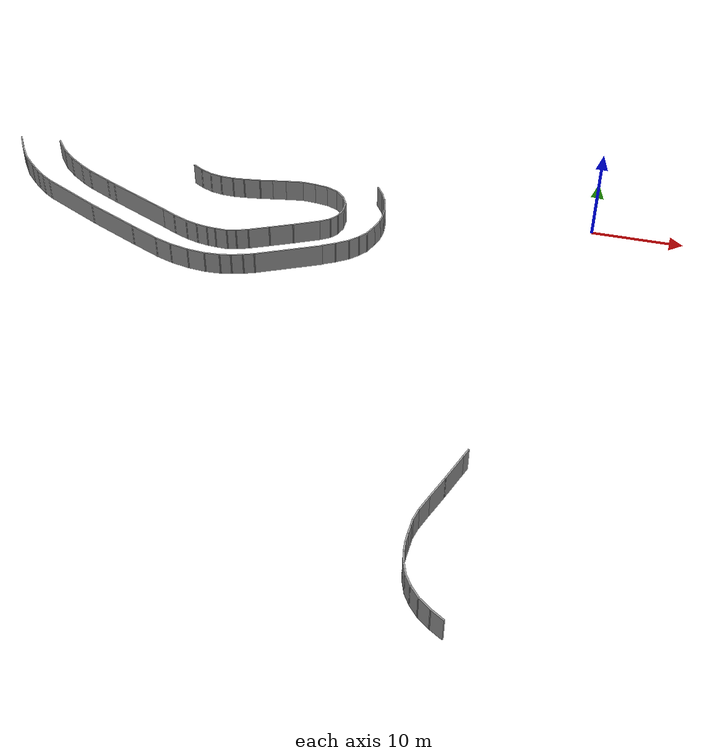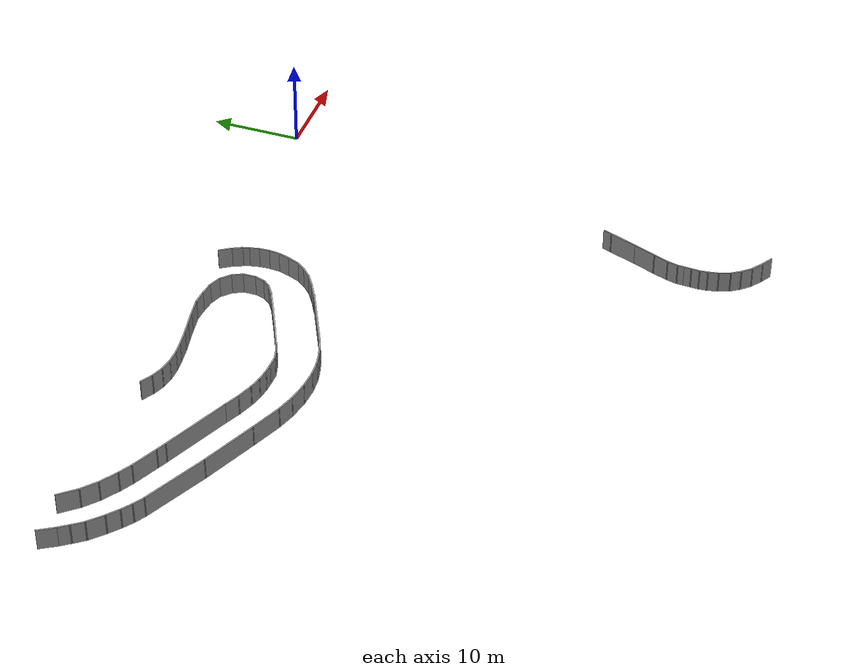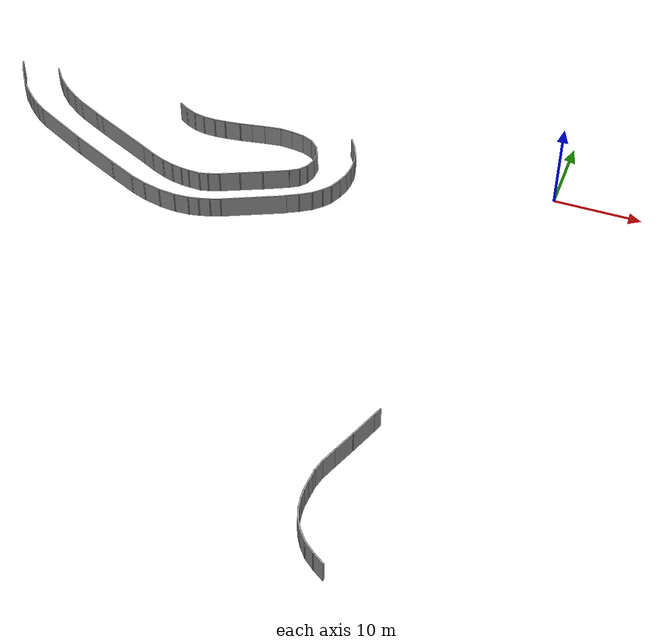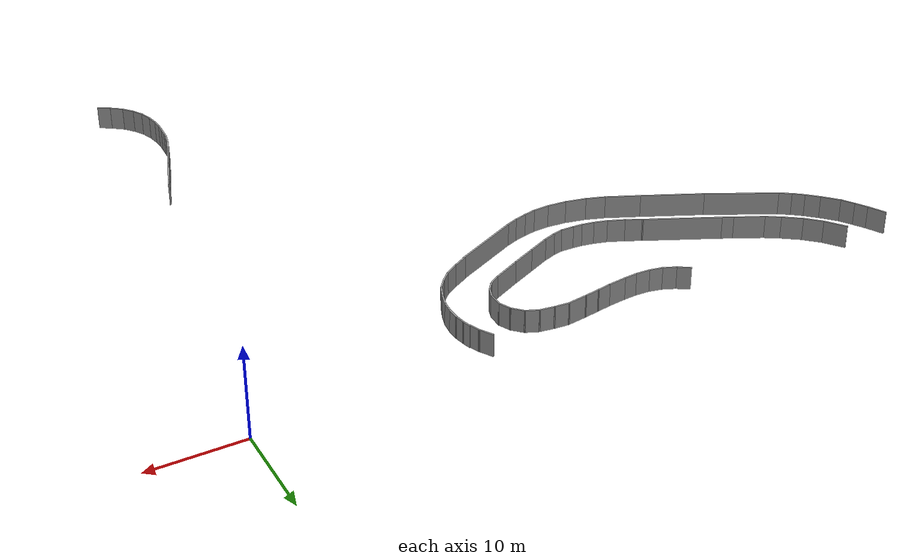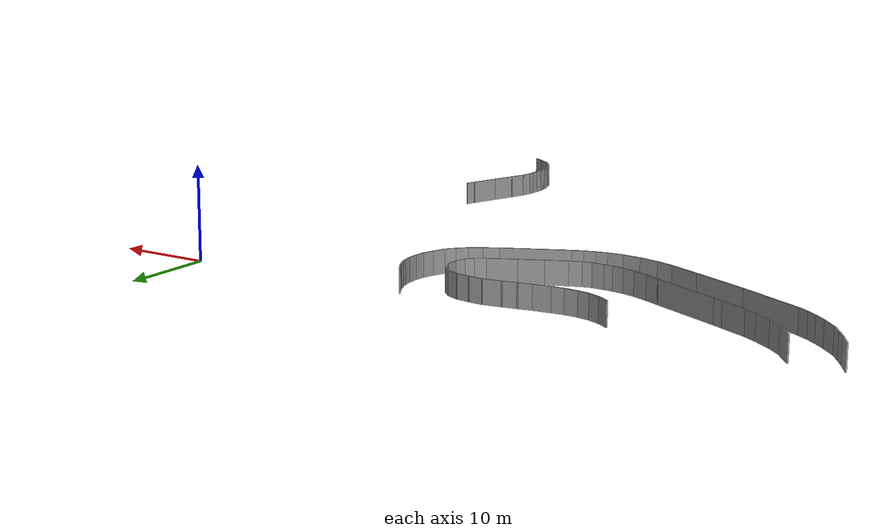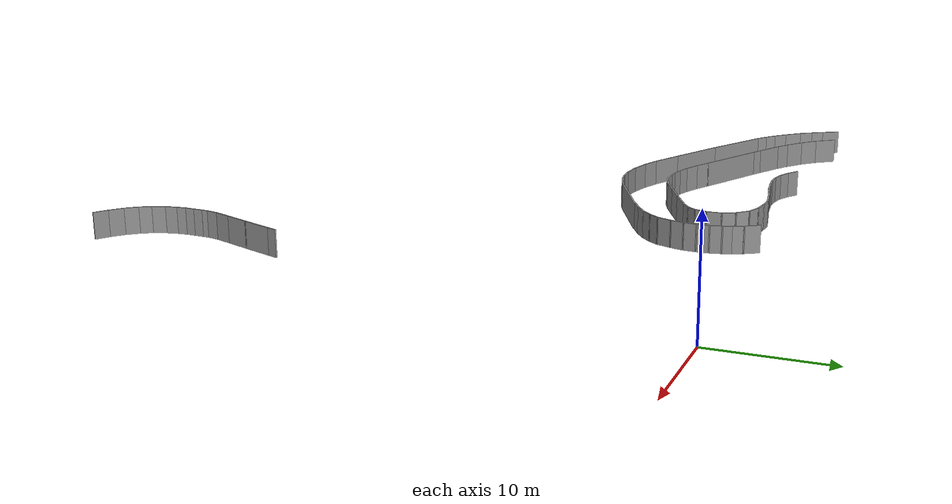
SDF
<sdf version="1.6">
 <model name="pista">
  <pose>-3.33646 -16.6519 0 0 -0 0</pose>
  <link name="Wall_122">
   <collision name="Wall_122_Collision">
    <geometry><box><size>1.00287 0.15 2.5</size></box></geometry>
    <pose>0 0 1.25 0 -0 0</pose>
   </collision>
   <visual name="Wall_122_Visual">
    <pose>0 0 1.25 0 -0 0</pose>
    <geometry><box><size>1.00287 0.15 2.5</size></box></geometry>
    <material>
     <script><uri>file://media/materials/scripts/gazebo.material</uri><name>Gazebo/Grey</name></script>
     <ambient>1 1 1 1</ambient>
    </material>
    <meta><layer>0</layer></meta>
   </visual>
   <pose>-7.35618 -32.3202 0 0 0 -1.63322</pose>
  </link>
  <link name="Wall_123">
   <collision name="Wall_123_Collision">
    <geometry><box><size>1.0548 0.15 2.5</size></box></geometry>
    <pose>0 0 1.25 0 -0 0</pose>
   </collision>
   <visual name="Wall_123_Visual">
    <pose>0 0 1.25 0 -0 0</pose>
    <geometry><box><size>1.0548 0.15 2.5</size></box></geometry>
    <material>
     <script><uri>file://media/materials/scripts/gazebo.material</uri><name>Gazebo/Grey</name></script>
     <ambient>1 1 1 1</ambient>
    </material>
    <meta><layer>0</layer></meta>
   </visual>
   <pose>-7.39608 -33.198 0 0 0 -1.6002</pose>
  </link>
  <link name="Wall_124">
   <collision name="Wall_124_Collision">
    <geometry><box><size>1.05792 0.15 2.5</size></box></geometry>
    <pose>0 0 1.25 0 -0 0</pose>
   </collision>
   <visual name="Wall_124_Visual">
    <pose>0 0 1.25 0 -0 0</pose>
    <geometry><box><size>1.05792 0.15 2.5</size></box></geometry>
    <material>
     <script><uri>file://media/materials/scripts/gazebo.material</uri><name>Gazebo/Grey</name></script>
     <ambient>1 1 1 1</ambient>
    </material>
    <meta><layer>0</layer></meta>
   </visual>
   <pose>-7.36948 -34.1024 0 0 0 -1.48279</pose>
  </link>
  <link name="Wall_125">
   <collision name="Wall_125_Collision">
    <geometry><box><size>1.2873 0.15 2.5</size></box></geometry>
    <pose>0 0 1.25 0 -0 0</pose>
   </collision>
   <visual name="Wall_125_Visual">
    <pose>0 0 1.25 0 -0 0</pose>
    <geometry><box><size>1.2873 0.15 2.5</size></box></geometry>
    <material>
     <script><uri>file://media/materials/scripts/gazebo.material</uri><name>Gazebo/Grey</name></script>
     <ambient>1 1 1 1</ambient>
    </material>
    <meta><layer>0</layer></meta>
   </visual>
   <pose>-7.22318 -35.1132 0 0 0 -1.38258</pose>
  </link>
  <link name="Wall_126">
   <collision name="Wall_126_Collision">
    <geometry><box><size>1.42042 0.15 2.5</size></box></geometry>
    <pose>0 0 1.25 0 -0 0</pose>
   </collision>
   <visual name="Wall_126_Visual">
    <pose>0 0 1.25 0 -0 0</pose>
    <geometry><box><size>1.42042 0.15 2.5</size></box></geometry>
    <material>
     <script><uri>file://media/materials/scripts/gazebo.material</uri><name>Gazebo/Grey</name></script>
     <ambient>1 1 1 1</ambient>
    </material>
    <meta><layer>0</layer></meta>
   </visual>
   <pose>-6.90397 -36.2703 0 0 0 -1.22918</pose>
  </link>
  <link name="Wall_127">
   <collision name="Wall_127_Collision">
    <geometry><box><size>1.30886 0.15 2.5</size></box></geometry>
    <pose>0 0 1.25 0 -0 0</pose>
   </collision>
   <visual name="Wall_127_Visual">
    <pose>0 0 1.25 0 -0 0</pose>
    <geometry><box><size>1.30886 0.15 2.5</size></box></geometry>
    <material>
     <script><uri>file://media/materials/scripts/gazebo.material</uri><name>Gazebo/Grey</name></script>
     <ambient>1 1 1 1</ambient>
    </material>
    <meta><layer>0</layer></meta>
   </visual>
   <pose>-6.38527 -37.3609 0 0 0 -1.01463</pose>
  </link>
  <link name="Wall_128">
   <collision name="Wall_128_Collision">
    <geometry><box><size>1.45124 0.15 2.5</size></box></geometry>
    <pose>0 0 1.25 0 -0 0</pose>
   </collision>
   <visual name="Wall_128_Visual">
    <pose>0 0 1.25 0 -0 0</pose>
    <geometry><box><size>1.45124 0.15 2.5</size></box></geometry>
    <material>
     <script><uri>file://media/materials/scripts/gazebo.material</uri><name>Gazebo/Grey</name></script>
     <ambient>1 1 1 1</ambient>
    </material>
    <meta><layer>0</layer></meta>
   </visual>
   <pose>-5.65376 -38.3451 0 0 0 -0.857736</pose>
  </link>
  <link name="Wall_129">
   <collision name="Wall_129_Collision">
    <geometry><box><size>1.55453 0.15 2.5</size></box></geometry>
    <pose>0 0 1.25 0 -0 0</pose>
   </collision>
   <visual name="Wall_129_Visual">
    <pose>0 0 1.25 0 -0 0</pose>
    <geometry><box><size>1.55453 0.15 2.5</size></box></geometry>
    <material>
     <script><uri>file://media/materials/scripts/gazebo.material</uri><name>Gazebo/Grey</name></script>
     <ambient>1 1 1 1</ambient>
    </material>
    <meta><layer>0</layer></meta>
   </visual>
   <pose>-4.66956 -39.2629 0 0 0 -0.651077</pose>
  </link>
  <link name="Wall_130">
   <collision name="Wall_130_Collision">
    <geometry><box><size>1.46395 0.15 2.5</size></box></geometry>
    <pose>0 0 1.25 0 -0 0</pose>
   </collision>
   <visual name="Wall_130_Visual">
    <pose>0 0 1.25 0 -0 0</pose>
    <geometry><box><size>1.46395 0.15 2.5</size></box></geometry>
    <material>
     <script><uri>file://media/materials/scripts/gazebo.material</uri><name>Gazebo/Grey</name></script>
     <ambient>1 1 1 1</ambient>
    </material>
    <meta><layer>0</layer></meta>
   </visual>
   <pose>-3.55235 -40.0343 0 0 0 -0.554307</pose>
  </link>
  <link name="Wall_149">
   <collision name="Wall_149_Collision">
    <geometry><box><size>0.788959 0.15 2.5</size></box></geometry>
    <pose>0 0 1.25 0 -0 0</pose>
   </collision>
   <visual name="Wall_149_Visual">
    <pose>0 0 1.25 0 -0 0</pose>
    <geometry><box><size>0.788959 0.15 2.5</size></box></geometry>
    <material>
     <script><uri>file://media/materials/scripts/gazebo.material</uri><name>Gazebo/Grey</name></script>
     <ambient>1 1 1 1</ambient>
    </material>
    <meta><layer>0</layer></meta>
   </visual>
   <pose>-7.31628 -31.5488 0 0 -0 1.52915</pose>
  </link>
  <link name="Wall_150">
   <collision name="Wall_150_Collision">
    <geometry><box><size>1.35026 0.15 2.5</size></box></geometry>
    <pose>0 0 1.25 0 -0 0</pose>
   </collision>
   <visual name="Wall_150_Visual">
    <pose>0 0 1.25 0 -0 0</pose>
    <geometry><box><size>1.35026 0.15 2.5</size></box></geometry>
    <material>
     <script><uri>file://media/materials/scripts/gazebo.material</uri><name>Gazebo/Grey</name></script>
     <ambient>1 1 1 1</ambient>
    </material>
    <meta><layer>0</layer></meta>
   </visual>
   <pose>-7.16998 -30.6444 0 0 -0 1.34732</pose>
  </link>
  <link name="Wall_151">
   <collision name="Wall_151_Collision">
    <geometry><box><size>1.87492 0.15 2.5</size></box></geometry>
    <pose>0 0 1.25 0 -0 0</pose>
   </collision>
   <visual name="Wall_151_Visual">
    <pose>0 0 1.25 0 -0 0</pose>
    <geometry><box><size>1.87492 0.15 2.5</size></box></geometry>
    <material>
     <script><uri>file://media/materials/scripts/gazebo.material</uri><name>Gazebo/Grey</name></script>
     <ambient>1 1 1 1</ambient>
    </material>
    <meta><layer>0</layer></meta>
   </visual>
   <pose>-6.74437 -29.2479 0 0 -0 1.22466</pose>
  </link>
  <link name="Wall_152">
   <collision name="Wall_152_Collision">
    <geometry><box><size>2.70915 0.15 2.5</size></box></geometry>
    <pose>0 0 1.25 0 -0 0</pose>
   </collision>
   <visual name="Wall_152_Visual">
    <pose>0 0 1.25 0 -0 0</pose>
    <geometry><box><size>2.70915 0.15 2.5</size></box></geometry>
    <material>
     <script><uri>file://media/materials/scripts/gazebo.material</uri><name>Gazebo/Grey</name></script>
     <ambient>1 1 1 1</ambient>
    </material>
    <meta><layer>0</layer></meta>
   </visual>
   <pose>-5.99957 -27.2396 0 0 -0 1.20959</pose>
  </link>
  <link name="Wall_153">
   <collision name="Wall_153_Collision">
    <geometry><box><size>3.28849 0.15 2.5</size></box></geometry>
    <pose>0 0 1.25 0 -0 0</pose>
   </collision>
   <visual name="Wall_153_Visual">
    <pose>0 0 1.25 0 -0 0</pose>
    <geometry><box><size>3.28849 0.15 2.5</size></box></geometry>
    <material>
     <script><uri>file://media/materials/scripts/gazebo.material</uri><name>Gazebo/Grey</name></script>
     <ambient>1 1 1 1</ambient>
    </material>
    <meta><layer>0</layer></meta>
   </visual>
   <pose>-5.01536 -24.5662 0 0 -0 1.22492</pose>
  </link>
  <link name="Wall_154">
   <collision name="Wall_154_Collision">
    <geometry><box><size>1.08404 0.15 2.5</size></box></geometry>
    <pose>0 0 1.25 0 -0 0</pose>
   </collision>
   <visual name="Wall_154_Visual">
    <pose>0 0 1.25 0 -0 0</pose>
    <geometry><box><size>1.08404 0.15 2.5</size></box></geometry>
    <material>
     <script><uri>file://media/materials/scripts/gazebo.material</uri><name>Gazebo/Grey</name></script>
     <ambient>1 1 1 1</ambient>
    </material>
    <meta><layer>0</layer></meta>
   </visual>
   <pose>-4.32376 -22.651 0 0 -0 1.22202</pose>
  </link>
  <link name="Wall_216">
   <collision name="Wall_216_Collision">
    <geometry><box><size>1.59647 0.15 2.5</size></box></geometry>
    <pose>0 0 1.25 0 -0 0</pose>
   </collision>
   <visual name="Wall_216_Visual">
    <pose>0 0 1.25 0 -0 0</pose>
    <geometry><box><size>1.59647 0.15 2.5</size></box></geometry>
    <material>
     <script><uri>file://media/materials/scripts/gazebo.material</uri><name>Gazebo/Grey</name></script>
     <ambient>1 1 1 1</ambient>
    </material>
    <meta><layer>0</layer></meta>
   </visual>
   <pose>-20.643 15.4006 0 0 0 -1.0083</pose>
  </link>
  <link name="Wall_217">
   <collision name="Wall_217_Collision">
    <geometry><box><size>1.24675 0.15 2.5</size></box></geometry>
    <pose>0 0 1.25 0 -0 0</pose>
   </collision>
   <visual name="Wall_217_Visual">
    <pose>0 0 1.25 0 -0 0</pose>
    <geometry><box><size>1.24675 0.15 2.5</size></box></geometry>
    <material>
     <script><uri>file://media/materials/scripts/gazebo.material</uri><name>Gazebo/Grey</name></script>
     <ambient>1 1 1 1</ambient>
    </material>
    <meta><layer>0</layer></meta>
   </visual>
   <pose>-20.0445 14.2834 0 0 0 -1.17227</pose>
  </link>
  <link name="Wall_219">
   <collision name="Wall_219_Collision">
    <geometry><box><size>0.95022 0.15 2.5</size></box></geometry>
    <pose>0 0 1.25 0 -0 0</pose>
   </collision>
   <visual name="Wall_219_Visual">
    <pose>0 0 1.25 0 -0 0</pose>
    <geometry><box><size>0.95022 0.15 2.5</size></box></geometry>
    <material>
     <script><uri>file://media/materials/scripts/gazebo.material</uri><name>Gazebo/Grey</name></script>
     <ambient>1 1 1 1</ambient>
    </material>
    <meta><layer>0</layer></meta>
   </visual>
   <pose>-19.6721 13.4188 0 0 0 -1.30163</pose>
  </link>
  <link name="Wall_220">
   <collision name="Wall_220_Collision">
    <geometry><box><size>1.23508 0.15 2.5</size></box></geometry>
    <pose>0 0 1.25 0 -0 0</pose>
   </collision>
   <visual name="Wall_220_Visual">
    <pose>0 0 1.25 0 -0 0</pose>
    <geometry><box><size>1.23508 0.15 2.5</size></box></geometry>
    <material>
     <script><uri>file://media/materials/scripts/gazebo.material</uri><name>Gazebo/Grey</name></script>
     <ambient>1 1 1 1</ambient>
    </material>
    <meta><layer>0</layer></meta>
   </visual>
   <pose>-19.4593 12.5011 0 0 0 -1.3734</pose>
  </link>
  <link name="Wall_221">
   <collision name="Wall_221_Collision">
    <geometry><box><size>1.29412 0.15 2.5</size></box></geometry>
    <pose>0 0 1.25 0 -0 0</pose>
   </collision>
   <visual name="Wall_221_Visual">
    <pose>0 0 1.25 0 -0 0</pose>
    <geometry><box><size>1.29412 0.15 2.5</size></box></geometry>
    <material>
     <script><uri>file://media/materials/scripts/gazebo.material</uri><name>Gazebo/Grey</name></script>
     <ambient>1 1 1 1</ambient>
    </material>
    <meta><layer>0</layer></meta>
   </visual>
   <pose>-19.3263 11.3972 0 0 0 -1.52432</pose>
  </link>
  <link name="Wall_222">
   <collision name="Wall_222_Collision">
    <geometry><box><size>1.32523 0.15 2.5</size></box></geometry>
    <pose>0 0 1.25 0 -0 0</pose>
   </collision>
   <visual name="Wall_222_Visual">
    <pose>0 0 1.25 0 -0 0</pose>
    <geometry><box><size>1.32523 0.15 2.5</size></box></geometry>
    <material>
     <script><uri>file://media/materials/scripts/gazebo.material</uri><name>Gazebo/Grey</name></script>
     <ambient>1 1 1 1</ambient>
    </material>
    <meta><layer>0</layer></meta>
   </visual>
   <pose>-19.3529 10.2401 0 0 0 -1.66146</pose>
  </link>
  <link name="Wall_223">
   <collision name="Wall_223_Collision">
    <geometry><box><size>1.42153 0.15 2.5</size></box></geometry>
    <pose>0 0 1.25 0 -0 0</pose>
   </collision>
   <visual name="Wall_223_Visual">
    <pose>0 0 1.25 0 -0 0</pose>
    <geometry><box><size>1.42153 0.15 2.5</size></box></geometry>
    <material>
     <script><uri>file://media/materials/scripts/gazebo.material</uri><name>Gazebo/Grey</name></script>
     <ambient>1 1 1 1</ambient>
    </material>
    <meta><layer>0</layer></meta>
   </visual>
   <pose>-19.579 9.04311 0 0 0 -1.84622</pose>
  </link>
  <link name="Wall_224">
   <collision name="Wall_224_Collision">
    <geometry><box><size>1.58247 0.15 2.5</size></box></geometry>
    <pose>0 0 1.25 0 -0 0</pose>
   </collision>
   <visual name="Wall_224_Visual">
    <pose>0 0 1.25 0 -0 0</pose>
    <geometry><box><size>1.58247 0.15 2.5</size></box></geometry>
    <material>
     <script><uri>file://media/materials/scripts/gazebo.material</uri><name>Gazebo/Grey</name></script>
     <ambient>1 1 1 1</ambient>
    </material>
    <meta><layer>0</layer></meta>
   </visual>
   <pose>-20.0179 7.7663 0 0 0 -1.9513</pose>
  </link>
  <link name="Wall_225">
   <collision name="Wall_225_Collision">
    <geometry><box><size>1.28854 0.15 2.5</size></box></geometry>
    <pose>0 0 1.25 0 -0 0</pose>
   </collision>
   <visual name="Wall_225_Visual">
    <pose>0 0 1.25 0 -0 0</pose>
    <geometry><box><size>1.28854 0.15 2.5</size></box></geometry>
    <material>
     <script><uri>file://media/materials/scripts/gazebo.material</uri><name>Gazebo/Grey</name></script>
     <ambient>1 1 1 1</ambient>
    </material>
    <meta><layer>0</layer></meta>
   </visual>
   <pose>-20.6297 6.64909 0 0 0 -2.22364</pose>
  </link>
  <link name="Wall_226">
   <collision name="Wall_226_Collision">
    <geometry><box><size>1.39141 0.15 2.5</size></box></geometry>
    <pose>0 0 1.25 0 -0 0</pose>
   </collision>
   <visual name="Wall_226_Visual">
    <pose>0 0 1.25 0 -0 0</pose>
    <geometry><box><size>1.39141 0.15 2.5</size></box></geometry>
    <material>
     <script><uri>file://media/materials/scripts/gazebo.material</uri><name>Gazebo/Grey</name></script>
     <ambient>1 1 1 1</ambient>
    </material>
    <meta><layer>0</layer></meta>
   </visual>
   <pose>-21.4144 5.75799 0 0 0 -2.35619</pose>
  </link>
  <link name="Wall_227">
   <collision name="Wall_227_Collision">
    <geometry><box><size>1.68453 0.15 2.5</size></box></geometry>
    <pose>0 0 1.25 0 -0 0</pose>
   </collision>
   <visual name="Wall_227_Visual">
    <pose>0 0 1.25 0 -0 0</pose>
    <geometry><box><size>1.68453 0.15 2.5</size></box></geometry>
    <material>
     <script><uri>file://media/materials/scripts/gazebo.material</uri><name>Gazebo/Grey</name></script>
     <ambient>1 1 1 1</ambient>
    </material>
    <meta><layer>0</layer></meta>
   </visual>
   <pose>-22.4917 4.89348 0 0 0 -2.55359</pose>
  </link>
  <link name="Wall_228">
   <collision name="Wall_228_Collision">
    <geometry><box><size>1.69762 0.15 2.5</size></box></geometry>
    <pose>0 0 1.25 0 -0 0</pose>
   </collision>
   <visual name="Wall_228_Visual">
    <pose>0 0 1.25 0 -0 0</pose>
    <geometry><box><size>1.69762 0.15 2.5</size></box></geometry>
    <material>
     <script><uri>file://media/materials/scripts/gazebo.material</uri><name>Gazebo/Grey</name></script>
     <ambient>1 1 1 1</ambient>
    </material>
    <meta><layer>0</layer></meta>
   </visual>
   <pose>-23.8084 4.09548 0 0 0 -2.6395</pose>
  </link>
  <link name="Wall_230">
   <collision name="Wall_230_Collision">
    <geometry><box><size>7.43151 0.15 2.5</size></box></geometry>
    <pose>0 0 1.25 0 -0 0</pose>
   </collision>
   <visual name="Wall_230_Visual">
    <pose>0 0 1.25 0 -0 0</pose>
    <geometry><box><size>7.43151 0.15 2.5</size></box></geometry>
    <material>
     <script><uri>file://media/materials/scripts/gazebo.material</uri><name>Gazebo/Grey</name></script>
     <ambient>1 1 1 1</ambient>
    </material>
    <meta><layer>0</layer></meta>
   </visual>
   <pose>-27.7186 2.12706 0 0 0 -2.69592</pose>
  </link>
  <link name="Wall_231">
   <collision name="Wall_231_Collision">
    <geometry><box><size>1.34553 0.15 2.5</size></box></geometry>
    <pose>0 0 1.25 0 -0 0</pose>
   </collision>
   <visual name="Wall_231_Visual">
    <pose>0 0 1.25 0 -0 0</pose>
    <geometry><box><size>1.34553 0.15 2.5</size></box></geometry>
    <material>
     <script><uri>file://media/materials/scripts/gazebo.material</uri><name>Gazebo/Grey</name></script>
     <ambient>1 1 1 1</ambient>
    </material>
    <meta><layer>0</layer></meta>
   </visual>
   <pose>-31.5624 0.344847 0 0 0 -2.77761</pose>
  </link>
  <link name="Wall_232">
   <collision name="Wall_232_Collision">
    <geometry><box><size>1.42153 0.15 2.5</size></box></geometry>
    <pose>0 0 1.25 0 -0 0</pose>
   </collision>
   <visual name="Wall_232_Visual">
    <pose>0 0 1.25 0 -0 0</pose>
    <geometry><box><size>1.42153 0.15 2.5</size></box></geometry>
    <material>
     <script><uri>file://media/materials/scripts/gazebo.material</uri><name>Gazebo/Grey</name></script>
     <ambient>1 1 1 1</ambient>
    </material>
    <meta><layer>0</layer></meta>
   </visual>
   <pose>-32.7328 -0.040855 0 0 0 -2.86617</pose>
  </link>
  <link name="Wall_233">
   <collision name="Wall_233_Collision">
    <geometry><box><size>1.34464 0.15 2.5</size></box></geometry>
    <pose>0 0 1.25 0 -0 0</pose>
   </collision>
   <visual name="Wall_233_Visual">
    <pose>0 0 1.25 0 -0 0</pose>
    <geometry><box><size>1.34464 0.15 2.5</size></box></geometry>
    <material>
     <script><uri>file://media/materials/scripts/gazebo.material</uri><name>Gazebo/Grey</name></script>
     <ambient>1 1 1 1</ambient>
    </material>
    <meta><layer>0</layer></meta>
   </visual>
   <pose>-33.9298 -0.333458 0 0 0 -2.93983</pose>
  </link>
  <link name="Wall_234">
   <collision name="Wall_234_Collision">
    <geometry><box><size>1.80264 0.15 2.5</size></box></geometry>
    <pose>0 0 1.25 0 -0 0</pose>
   </collision>
   <visual name="Wall_234_Visual">
    <pose>0 0 1.25 0 -0 0</pose>
    <geometry><box><size>1.80264 0.15 2.5</size></box></geometry>
    <material>
     <script><uri>file://media/materials/scripts/gazebo.material</uri><name>Gazebo/Grey</name></script>
     <ambient>1 1 1 1</ambient>
    </material>
    <meta><layer>0</layer></meta>
   </visual>
   <pose>-35.3396 -0.506359 0 0 0 -3.07717</pose>
  </link>
  <link name="Wall_235">
   <collision name="Wall_235_Collision">
    <geometry><box><size>2.09836 0.15 2.5</size></box></geometry>
    <pose>0 0 1.25 0 -0 0</pose>
   </collision>
   <visual name="Wall_235_Visual">
    <pose>0 0 1.25 0 -0 0</pose>
    <geometry><box><size>2.09836 0.15 2.5</size></box></geometry>
    <material>
     <script><uri>file://media/materials/scripts/gazebo.material</uri><name>Gazebo/Grey</name></script>
     <ambient>1 1 1 1</ambient>
    </material>
    <meta><layer>0</layer></meta>
   </visual>
   <pose>-37.1351 -0.479759 0 0 -0 3.05959</pose>
  </link>
  <link name="Wall_236">
   <collision name="Wall_236_Collision">
    <geometry><box><size>2.29952 0.15 2.5</size></box></geometry>
    <pose>0 0 1.25 0 -0 0</pose>
   </collision>
   <visual name="Wall_236_Visual">
    <pose>0 0 1.25 0 -0 0</pose>
    <geometry><box><size>2.29952 0.15 2.5</size></box></geometry>
    <material>
     <script><uri>file://media/materials/scripts/gazebo.material</uri><name>Gazebo/Grey</name></script>
     <ambient>1 1 1 1</ambient>
    </material>
    <meta><layer>0</layer></meta>
   </visual>
   <pose>-39.1567 -0.173857 0 0 -0 2.92964</pose>
  </link>
  <link name="Wall_237">
   <collision name="Wall_237_Collision">
    <geometry><box><size>2.1436 0.15 2.5</size></box></geometry>
    <pose>0 0 1.25 0 -0 0</pose>
   </collision>
   <visual name="Wall_237_Visual">
    <pose>0 0 1.25 0 -0 0</pose>
    <geometry><box><size>2.1436 0.15 2.5</size></box></geometry>
    <material>
     <script><uri>file://media/materials/scripts/gazebo.material</uri><name>Gazebo/Grey</name></script>
     <ambient>1 1 1 1</ambient>
    </material>
    <meta><layer>0</layer></meta>
   </visual>
   <pose>-41.1517 0.371449 0 0 -0 2.81562</pose>
  </link>
  <link name="Wall_238">
   <collision name="Wall_238_Collision">
    <geometry><box><size>3.73402 0.15 2.5</size></box></geometry>
    <pose>0 0 1.25 0 -0 0</pose>
   </collision>
   <visual name="Wall_238_Visual">
    <pose>0 0 1.25 0 -0 0</pose>
    <geometry><box><size>3.73402 0.15 2.5</size></box></geometry>
    <material>
     <script><uri>file://media/materials/scripts/gazebo.material</uri><name>Gazebo/Grey</name></script>
     <ambient>1 1 1 1</ambient>
    </material>
    <meta><layer>0</layer></meta>
   </visual>
   <pose>-43.7319 1.42216 0 0 -0 2.72111</pose>
  </link>
  <link name="Wall_239">
   <collision name="Wall_239_Collision">
    <geometry><box><size>6.62457 0.15 2.5</size></box></geometry>
    <pose>0 0 1.25 0 -0 0</pose>
   </collision>
   <visual name="Wall_239_Visual">
    <pose>0 0 1.25 0 -0 0</pose>
    <geometry><box><size>6.62457 0.15 2.5</size></box></geometry>
    <material>
     <script><uri>file://media/materials/scripts/gazebo.material</uri><name>Gazebo/Grey</name></script>
     <ambient>1 1 1 1</ambient>
    </material>
    <meta><layer>0</layer></meta>
   </visual>
   <pose>-48.3072 3.51027 0 0 -0 2.70919</pose>
  </link>
  <link name="Wall_241">
   <collision name="Wall_241_Collision">
    <geometry><box><size>7.69213 0.15 2.5</size></box></geometry>
    <pose>0 0 1.25 0 -0 0</pose>
   </collision>
   <visual name="Wall_241_Visual">
    <pose>0 0 1.25 0 -0 0</pose>
    <geometry><box><size>7.69213 0.15 2.5</size></box></geometry>
    <material>
     <script><uri>file://media/materials/scripts/gazebo.material</uri><name>Gazebo/Grey</name></script>
     <ambient>1 1 1 1</ambient>
    </material>
    <meta><layer>0</layer></meta>
   </visual>
   <pose>-54.6114 6.56929 0 0 -0 2.67321</pose>
  </link>
  <link name="Wall_242">
   <collision name="Wall_242_Collision">
    <geometry><box><size>1.47815 0.15 2.5</size></box></geometry>
    <pose>0 0 1.25 0 -0 0</pose>
   </collision>
   <visual name="Wall_242_Visual">
    <pose>0 0 1.25 0 -0 0</pose>
    <geometry><box><size>1.47815 0.15 2.5</size></box></geometry>
    <material>
     <script><uri>file://media/materials/scripts/gazebo.material</uri><name>Gazebo/Grey</name></script>
     <ambient>1 1 1 1</ambient>
    </material>
    <meta><layer>0</layer></meta>
   </visual>
   <pose>-58.535 8.63081 0 0 -0 2.57025</pose>
  </link>
  <link name="Wall_243">
   <collision name="Wall_243_Collision">
    <geometry><box><size>1.45883 0.15 2.5</size></box></geometry>
    <pose>0 0 1.25 0 -0 0</pose>
   </collision>
   <visual name="Wall_243_Visual">
    <pose>0 0 1.25 0 -0 0</pose>
    <geometry><box><size>1.45883 0.15 2.5</size></box></geometry>
    <material>
     <script><uri>file://media/materials/scripts/gazebo.material</uri><name>Gazebo/Grey</name></script>
     <ambient>1 1 1 1</ambient>
    </material>
    <meta><layer>0</layer></meta>
   </visual>
   <pose>-59.6123 9.38892 0 0 -0 2.4859</pose>
  </link>
  <link name="Wall_244">
   <collision name="Wall_244_Collision">
    <geometry><box><size>1.71399 0.15 2.5</size></box></geometry>
    <pose>0 0 1.25 0 -0 0</pose>
   </collision>
   <visual name="Wall_244_Visual">
    <pose>0 0 1.25 0 -0 0</pose>
    <geometry><box><size>1.71399 0.15 2.5</size></box></geometry>
    <material>
     <script><uri>file://media/materials/scripts/gazebo.material</uri><name>Gazebo/Grey</name></script>
     <ambient>1 1 1 1</ambient>
    </material>
    <meta><layer>0</layer></meta>
   </visual>
   <pose>-60.7162 10.3066 0 0 -0 2.41636</pose>
  </link>
  <link name="Wall_245">
   <collision name="Wall_245_Collision">
    <geometry><box><size>2.18139 0.15 2.5</size></box></geometry>
    <pose>0 0 1.25 0 -0 0</pose>
   </collision>
   <visual name="Wall_245_Visual">
    <pose>0 0 1.25 0 -0 0</pose>
    <geometry><box><size>2.18139 0.15 2.5</size></box></geometry>
    <material>
     <script><uri>file://media/materials/scripts/gazebo.material</uri><name>Gazebo/Grey</name></script>
     <ambient>1 1 1 1</ambient>
    </material>
    <meta><layer>0</layer></meta>
   </visual>
   <pose>-62.0196 11.5435 0 0 -0 2.35619</pose>
  </link>
  <link name="Wall_246">
   <collision name="Wall_246_Collision">
    <geometry><box><size>1.6188 0.15 2.5</size></box></geometry>
    <pose>0 0 1.25 0 -0 0</pose>
   </collision>
   <visual name="Wall_246_Visual">
    <pose>0 0 1.25 0 -0 0</pose>
    <geometry><box><size>1.6188 0.15 2.5</size></box></geometry>
    <material>
     <script><uri>file://media/materials/scripts/gazebo.material</uri><name>Gazebo/Grey</name></script>
     <ambient>1 1 1 1</ambient>
    </material>
    <meta><layer>0</layer></meta>
   </visual>
   <pose>-63.1634 12.8602 0 0 -0 2.18894</pose>
  </link>
  <link name="Wall_247">
   <collision name="Wall_247_Collision">
    <geometry><box><size>1.43372 0.15 2.5</size></box></geometry>
    <pose>0 0 1.25 0 -0 0</pose>
   </collision>
   <visual name="Wall_247_Visual">
    <pose>0 0 1.25 0 -0 0</pose>
    <geometry><box><size>1.43372 0.15 2.5</size></box></geometry>
    <material>
     <script><uri>file://media/materials/scripts/gazebo.material</uri><name>Gazebo/Grey</name></script>
     <ambient>1 1 1 1</ambient>
    </material>
    <meta><layer>0</layer></meta>
   </visual>
   <pose>-63.9481 13.9908 0 0 -0 2.16455</pose>
  </link>
  <link name="Wall_249">
   <collision name="Wall_249_Collision">
    <geometry><box><size>2.05707 0.15 2.5</size></box></geometry>
    <pose>0 0 1.25 0 -0 0</pose>
   </collision>
   <visual name="Wall_249_Visual">
    <pose>0 0 1.25 0 -0 0</pose>
    <geometry><box><size>2.05707 0.15 2.5</size></box></geometry>
    <material>
     <script><uri>file://media/materials/scripts/gazebo.material</uri><name>Gazebo/Grey</name></script>
     <ambient>1 1 1 1</ambient>
    </material>
    <meta><layer>0</layer></meta>
   </visual>
   <pose>-64.8126 15.374 0 0 -0 2.09686</pose>
  </link>
  <link name="Wall_425">
   <collision name="Wall_425_Collision">
    <geometry><box><size>2.47641 0.15 2.5</size></box></geometry>
    <pose>0 0 1.25 0 -0 0</pose>
   </collision>
   <visual name="Wall_425_Visual">
    <pose>0 0 1.25 0 -0 0</pose>
    <geometry><box><size>2.47641 0.15 2.5</size></box></geometry>
    <material>
     <script><uri>file://media/materials/scripts/gazebo.material</uri><name>Gazebo/Grey</name></script>
     <ambient>1 1 1 1</ambient>
    </material>
    <meta><layer>0</layer></meta>
   </visual>
   <pose>-59.6401 15.5811 0 0 0 -0.890698</pose>
  </link>
  <link name="Wall_426">
   <collision name="Wall_426_Collision">
    <geometry><box><size>2.16478 0.15 2.5</size></box></geometry>
    <pose>0 0 1.25 0 -0 0</pose>
   </collision>
   <visual name="Wall_426_Visual">
    <pose>0 0 1.25 0 -0 0</pose>
    <geometry><box><size>2.16478 0.15 2.5</size></box></geometry>
    <material>
     <script><uri>file://media/materials/scripts/gazebo.material</uri><name>Gazebo/Grey</name></script>
     <ambient>1 1 1 1</ambient>
    </material>
    <meta><layer>0</layer></meta>
   </visual>
   <pose>-58.1638 13.9983 0 0 0 -0.738703</pose>
  </link>
  <link name="Wall_427">
   <collision name="Wall_427_Collision">
    <geometry><box><size>2.327 0.15 2.5</size></box></geometry>
    <pose>0 0 1.25 0 -0 0</pose>
   </collision>
   <visual name="Wall_427_Visual">
    <pose>0 0 1.25 0 -0 0</pose>
    <geometry><box><size>2.327 0.15 2.5</size></box></geometry>
    <material>
     <script><uri>file://media/materials/scripts/gazebo.material</uri><name>Gazebo/Grey</name></script>
     <ambient>1 1 1 1</ambient>
    </material>
    <meta><layer>0</layer></meta>
   </visual>
   <pose>-56.5279 12.6949 0 0 0 -0.611727</pose>
  </link>
  <link name="Wall_428">
   <collision name="Wall_428_Collision">
    <geometry><box><size>1.76036 0.15 2.5</size></box></geometry>
    <pose>0 0 1.25 0 -0 0</pose>
   </collision>
   <visual name="Wall_428_Visual">
    <pose>0 0 1.25 0 -0 0</pose>
    <geometry><box><size>1.76036 0.15 2.5</size></box></geometry>
    <material>
     <script><uri>file://media/materials/scripts/gazebo.material</uri><name>Gazebo/Grey</name></script>
     <ambient>1 1 1 1</ambient>
    </material>
    <meta><layer>0</layer></meta>
   </visual>
   <pose>-54.9452 11.6575 0 0 0 -0.537587</pose>
  </link>
  <link name="Wall_429">
   <collision name="Wall_429_Collision">
    <geometry><box><size>3.26677 0.15 2.5</size></box></geometry>
    <pose>0 0 1.25 0 -0 0</pose>
   </collision>
   <visual name="Wall_429_Visual">
    <pose>0 0 1.25 0 -0 0</pose>
    <geometry><box><size>3.26677 0.15 2.5</size></box></geometry>
    <material>
     <script><uri>file://media/materials/scripts/gazebo.material</uri><name>Gazebo/Grey</name></script>
     <ambient>1 1 1 1</ambient>
    </material>
    <meta><layer>0</layer></meta>
   </visual>
   <pose>-52.8571 10.5536 0 0 0 -0.459831</pose>
  </link>
  <link name="Wall_430">
   <collision name="Wall_430_Collision">
    <geometry><box><size>1.30397 0.15 2.5</size></box></geometry>
    <pose>0 0 1.25 0 -0 0</pose>
   </collision>
   <visual name="Wall_430_Visual">
    <pose>0 0 1.25 0 -0 0</pose>
    <geometry><box><size>1.30397 0.15 2.5</size></box></geometry>
    <material>
     <script><uri>file://media/materials/scripts/gazebo.material</uri><name>Gazebo/Grey</name></script>
     <ambient>1 1 1 1</ambient>
    </material>
    <meta><layer>0</layer></meta>
   </visual>
   <pose>-50.9419 9.60931 0 0 0 -0.453339</pose>
  </link>
  <link name="Wall_433">
   <collision name="Wall_433_Collision">
    <geometry><box><size>8.07561 0.15 2.5</size></box></geometry>
    <pose>0 0 1.25 0 -0 0</pose>
   </collision>
   <visual name="Wall_433_Visual">
    <pose>0 0 1.25 0 -0 0</pose>
    <geometry><box><size>8.07561 0.15 2.5</size></box></geometry>
    <material>
     <script><uri>file://media/materials/scripts/gazebo.material</uri><name>Gazebo/Grey</name></script>
     <ambient>1 1 1 1</ambient>
    </material>
    <meta><layer>0</layer></meta>
   </visual>
   <pose>-46.8321 7.68079 0 0 0 -0.436627</pose>
  </link>
  <link name="Wall_434">
   <collision name="Wall_434_Collision">
    <geometry><box><size>1.89875 0.15 2.5</size></box></geometry>
    <pose>0 0 1.25 0 -0 0</pose>
   </collision>
   <visual name="Wall_434_Visual">
    <pose>0 0 1.25 0 -0 0</pose>
    <geometry><box><size>1.89875 0.15 2.5</size></box></geometry>
    <material>
     <script><uri>file://media/materials/scripts/gazebo.material</uri><name>Gazebo/Grey</name></script>
     <ambient>1 1 1 1</ambient>
    </material>
    <meta><layer>0</layer></meta>
   </visual>
   <pose>-42.4564 5.61928 0 0 0 -0.456845</pose>
  </link>
  <link name="Wall_435">
   <collision name="Wall_435_Collision">
    <geometry><box><size>1.92824 0.15 2.5</size></box></geometry>
    <pose>0 0 1.25 0 -0 0</pose>
   </collision>
   <visual name="Wall_435_Visual">
    <pose>0 0 1.25 0 -0 0</pose>
    <geometry><box><size>1.92824 0.15 2.5</size></box></geometry>
    <material>
     <script><uri>file://media/materials/scripts/gazebo.material</uri><name>Gazebo/Grey</name></script>
     <ambient>1 1 1 1</ambient>
    </material>
    <meta><layer>0</layer></meta>
   </visual>
   <pose>-40.8471 4.90107 0 0 0 -0.383284</pose>
  </link>
  <link name="Wall_436">
   <collision name="Wall_436_Collision">
    <geometry><box><size>1.53116 0.15 2.5</size></box></geometry>
    <pose>0 0 1.25 0 -0 0</pose>
   </collision>
   <visual name="Wall_436_Visual">
    <pose>0 0 1.25 0 -0 0</pose>
    <geometry><box><size>1.53116 0.15 2.5</size></box></geometry>
    <material>
     <script><uri>file://media/materials/scripts/gazebo.material</uri><name>Gazebo/Grey</name></script>
     <ambient>1 1 1 1</ambient>
    </material>
    <meta><layer>0</layer></meta>
   </visual>
   <pose>-39.3575 4.38237 0 0 0 -0.273009</pose>
  </link>
  <link name="Wall_437">
   <collision name="Wall_437_Collision">
    <geometry><box><size>1.41819 0.15 2.5</size></box></geometry>
    <pose>0 0 1.25 0 -0 0</pose>
   </collision>
   <visual name="Wall_437_Visual">
    <pose>0 0 1.25 0 -0 0</pose>
    <geometry><box><size>1.41819 0.15 2.5</size></box></geometry>
    <material>
     <script><uri>file://media/materials/scripts/gazebo.material</uri><name>Gazebo/Grey</name></script>
     <ambient>1 1 1 1</ambient>
    </material>
    <meta><layer>0</layer></meta>
   </visual>
   <pose>-38.0674 4.08977 0 0 0 -0.168597</pose>
  </link>
  <link name="Wall_438">
   <collision name="Wall_438_Collision">
    <geometry><box><size>1.10908 0.15 2.5</size></box></geometry>
    <pose>0 0 1.25 0 -0 0</pose>
   </collision>
   <visual name="Wall_438_Visual">
    <pose>0 0 1.25 0 -0 0</pose>
    <geometry><box><size>1.10908 0.15 2.5</size></box></geometry>
    <material>
     <script><uri>file://media/materials/scripts/gazebo.material</uri><name>Gazebo/Grey</name></script>
     <ambient>1 1 1 1</ambient>
    </material>
    <meta><layer>0</layer></meta>
   </visual>
   <pose>-36.9634 3.95677 0 0 0 -0.055499</pose>
  </link>
  <link name="Wall_439">
   <collision name="Wall_439_Collision">
    <geometry><box><size>1.48028 0.15 2.5</size></box></geometry>
    <pose>0 0 1.25 0 -0 0</pose>
   </collision>
   <visual name="Wall_439_Visual">
    <pose>0 0 1.25 0 -0 0</pose>
    <geometry><box><size>1.48028 0.15 2.5</size></box></geometry>
    <material>
     <script><uri>file://media/materials/scripts/gazebo.material</uri><name>Gazebo/Grey</name></script>
     <ambient>1 1 1 1</ambient>
    </material>
    <meta><layer>0</layer></meta>
   </visual>
   <pose>-35.8196 3.91687 0 0 0 -0.019997</pose>
  </link>
  <link name="Wall_440">
   <collision name="Wall_440_Collision">
    <geometry><box><size>1.13708 0.15 2.5</size></box></geometry>
    <pose>0 0 1.25 0 -0 0</pose>
   </collision>
   <visual name="Wall_440_Visual">
    <pose>0 0 1.25 0 -0 0</pose>
    <geometry><box><size>1.13708 0.15 2.5</size></box></geometry>
    <material>
     <script><uri>file://media/materials/scripts/gazebo.material</uri><name>Gazebo/Grey</name></script>
     <ambient>1 1 1 1</ambient>
    </material>
    <meta><layer>0</layer></meta>
   </visual>
   <pose>-34.6758 4.02327 0 0 -0 0.244979</pose>
  </link>
  <link name="Wall_441">
   <collision name="Wall_441_Collision">
    <geometry><box><size>1.47948 0.15 2.5</size></box></geometry>
    <pose>0 0 1.25 0 -0 0</pose>
   </collision>
   <visual name="Wall_441_Visual">
    <pose>0 0 1.25 0 -0 0</pose>
    <geometry><box><size>1.47948 0.15 2.5</size></box></geometry>
    <material>
     <script><uri>file://media/materials/scripts/gazebo.material</uri><name>Gazebo/Grey</name></script>
     <ambient>1 1 1 1</ambient>
    </material>
    <meta><layer>0</layer></meta>
   </visual>
   <pose>-33.5719 4.36907 0 0 -0 0.347062</pose>
  </link>
  <link name="Wall_442">
   <collision name="Wall_442_Collision">
    <geometry><box><size>2.47048 0.15 2.5</size></box></geometry>
    <pose>0 0 1.25 0 -0 0</pose>
   </collision>
   <visual name="Wall_442_Visual">
    <pose>0 0 1.25 0 -0 0</pose>
    <geometry><box><size>2.47048 0.15 2.5</size></box></geometry>
    <material>
     <script><uri>file://media/materials/scripts/gazebo.material</uri><name>Gazebo/Grey</name></script>
     <ambient>1 1 1 1</ambient>
    </material>
    <meta><layer>0</layer></meta>
   </visual>
   <pose>-31.8961 5.08727 0 0 -0 0.438012</pose>
  </link>
  <link name="Wall_443">
   <collision name="Wall_443_Collision">
    <geometry><box><size>2.76779 0.15 2.5</size></box></geometry>
    <pose>0 0 1.25 0 -0 0</pose>
   </collision>
   <visual name="Wall_443_Visual">
    <pose>0 0 1.25 0 -0 0</pose>
    <geometry><box><size>2.76779 0.15 2.5</size></box></geometry>
    <material>
     <script><uri>file://media/materials/scripts/gazebo.material</uri><name>Gazebo/Grey</name></script>
     <ambient>1 1 1 1</ambient>
    </material>
    <meta><layer>0</layer></meta>
   </visual>
   <pose>-29.6617 6.13798 0 0 -0 0.440924</pose>
  </link>
  <link name="Wall_444">
   <collision name="Wall_444_Collision">
    <geometry><box><size>3.14781 0.15 2.5</size></box></geometry>
    <pose>0 0 1.25 0 -0 0</pose>
   </collision>
   <visual name="Wall_444_Visual">
    <pose>0 0 1.25 0 -0 0</pose>
    <geometry><box><size>3.14781 0.15 2.5</size></box></geometry>
    <material>
     <script><uri>file://media/materials/scripts/gazebo.material</uri><name>Gazebo/Grey</name></script>
     <ambient>1 1 1 1</ambient>
    </material>
    <meta><layer>0</layer></meta>
   </visual>
   <pose>-27.1347 7.36159 0 0 -0 0.459679</pose>
  </link>
  <link name="Wall_446">
   <collision name="Wall_446_Collision">
    <geometry><box><size>1.3009 0.15 2.5</size></box></geometry>
    <pose>0 0 1.25 0 -0 0</pose>
   </collision>
   <visual name="Wall_446_Visual">
    <pose>0 0 1.25 0 -0 0</pose>
    <geometry><box><size>1.3009 0.15 2.5</size></box></geometry>
    <material>
     <script><uri>file://media/materials/scripts/gazebo.material</uri><name>Gazebo/Grey</name></script>
     <ambient>1 1 1 1</ambient>
    </material>
    <meta><layer>0</layer></meta>
   </visual>
   <pose>-25.2594 8.3724 0 0 -0 0.588003</pose>
  </link>
  <link name="Wall_447">
   <collision name="Wall_447_Collision">
    <geometry><box><size>1.15554 0.15 2.5</size></box></geometry>
    <pose>0 0 1.25 0 -0 0</pose>
   </collision>
   <visual name="Wall_447_Visual">
    <pose>0 0 1.25 0 -0 0</pose>
    <geometry><box><size>1.15554 0.15 2.5</size></box></geometry>
    <material>
     <script><uri>file://media/materials/scripts/gazebo.material</uri><name>Gazebo/Grey</name></script>
     <ambient>1 1 1 1</ambient>
    </material>
    <meta><layer>0</layer></meta>
   </visual>
   <pose>-24.4747 9.09061 0 0 -0 0.916714</pose>
  </link>
  <link name="Wall_448">
   <collision name="Wall_448_Collision">
    <geometry><box><size>1.29412 0.15 2.5</size></box></geometry>
    <pose>0 0 1.25 0 -0 0</pose>
   </collision>
   <visual name="Wall_448_Visual">
    <pose>0 0 1.25 0 -0 0</pose>
    <geometry><box><size>1.29412 0.15 2.5</size></box></geometry>
    <material>
     <script><uri>file://media/materials/scripts/gazebo.material</uri><name>Gazebo/Grey</name></script>
     <ambient>1 1 1 1</ambient>
    </material>
    <meta><layer>0</layer></meta>
   </visual>
   <pose>-23.9959 10.0349 0 0 -0 1.26375</pose>
  </link>
  <link name="Wall_449">
   <collision name="Wall_449_Collision">
    <geometry><box><size>1.56006 0.15 2.5</size></box></geometry>
    <pose>0 0 1.25 0 -0 0</pose>
   </collision>
   <visual name="Wall_449_Visual">
    <pose>0 0 1.25 0 -0 0</pose>
    <geometry><box><size>1.56006 0.15 2.5</size></box></geometry>
    <material>
     <script><uri>file://media/materials/scripts/gazebo.material</uri><name>Gazebo/Grey</name></script>
     <ambient>1 1 1 1</ambient>
    </material>
    <meta><layer>0</layer></meta>
   </visual>
   <pose>-23.8362 11.2851 0 0 -0 1.58966</pose>
  </link>
  <link name="Wall_450">
   <collision name="Wall_450_Collision">
    <geometry><box><size>1.42292 0.15 2.5</size></box></geometry>
    <pose>0 0 1.25 0 -0 0</pose>
   </collision>
   <visual name="Wall_450_Visual">
    <pose>0 0 1.25 0 -0 0</pose>
    <geometry><box><size>1.42292 0.15 2.5</size></box></geometry>
    <material>
     <script><uri>file://media/materials/scripts/gazebo.material</uri><name>Gazebo/Grey</name></script>
     <ambient>1 1 1 1</ambient>
    </material>
    <meta><layer>0</layer></meta>
   </visual>
   <pose>-24.1289 12.5619 0 0 -0 2.0251</pose>
  </link>
  <link name="Wall_451">
   <collision name="Wall_451_Collision">
    <geometry><box><size>1.54188 0.15 2.5</size></box></geometry>
    <pose>0 0 1.25 0 -0 0</pose>
   </collision>
   <visual name="Wall_451_Visual">
    <pose>0 0 1.25 0 -0 0</pose>
    <geometry><box><size>1.54188 0.15 2.5</size></box></geometry>
    <material>
     <script><uri>file://media/materials/scripts/gazebo.material</uri><name>Gazebo/Grey</name></script>
     <ambient>1 1 1 1</ambient>
    </material>
    <meta><layer>0</layer></meta>
   </visual>
   <pose>-24.9003 13.6259 0 0 -0 2.35619</pose>
  </link>
  <link name="Wall_452">
   <collision name="Wall_452_Collision">
    <geometry><box><size>1.53321 0.15 2.5</size></box></geometry>
    <pose>0 0 1.25 0 -0 0</pose>
   </collision>
   <visual name="Wall_452_Visual">
    <pose>0 0 1.25 0 -0 0</pose>
    <geometry><box><size>1.53321 0.15 2.5</size></box></geometry>
    <material>
     <script><uri>file://media/materials/scripts/gazebo.material</uri><name>Gazebo/Grey</name></script>
     <ambient>1 1 1 1</ambient>
    </material>
    <meta><layer>0</layer></meta>
   </visual>
   <pose>-26.0308 14.384 0 0 -0 2.7468</pose>
  </link>
  <link name="Wall_453">
   <collision name="Wall_453_Collision">
    <geometry><box><size>1.62841 0.15 2.5</size></box></geometry>
    <pose>0 0 1.25 0 -0 0</pose>
   </collision>
   <visual name="Wall_453_Visual">
    <pose>0 0 1.25 0 -0 0</pose>
    <geometry><box><size>1.62841 0.15 2.5</size></box></geometry>
    <material>
     <script><uri>file://media/materials/scripts/gazebo.material</uri><name>Gazebo/Grey</name></script>
     <ambient>1 1 1 1</ambient>
    </material>
    <meta><layer>0</layer></meta>
   </visual>
   <pose>-27.4007 14.7564 0 0 -0 2.99715</pose>
  </link>
  <link name="Wall_454">
   <collision name="Wall_454_Collision">
    <geometry><box><size>1.64341 0.15 2.5</size></box></geometry>
    <pose>0 0 1.25 0 -0 0</pose>
   </collision>
   <visual name="Wall_454_Visual">
    <pose>0 0 1.25 0 -0 0</pose>
    <geometry><box><size>1.64341 0.15 2.5</size></box></geometry>
    <material>
     <script><uri>file://media/materials/scripts/gazebo.material</uri><name>Gazebo/Grey</name></script>
     <ambient>1 1 1 1</ambient>
    </material>
    <meta><layer>0</layer></meta>
   </visual>
   <pose>-28.877 14.916 0 0 -0 3.07029</pose>
  </link>
  <link name="Wall_455">
   <collision name="Wall_455_Collision">
    <geometry><box><size>2.14004 0.15 2.5</size></box></geometry>
    <pose>0 0 1.25 0 -0 0</pose>
   </collision>
   <visual name="Wall_455_Visual">
    <pose>0 0 1.25 0 -0 0</pose>
    <geometry><box><size>2.14004 0.15 2.5</size></box></geometry>
    <material>
     <script><uri>file://media/materials/scripts/gazebo.material</uri><name>Gazebo/Grey</name></script>
     <ambient>1 1 1 1</ambient>
    </material>
    <meta><layer>0</layer></meta>
   </visual>
   <pose>-30.606 14.8229 0 0 0 -2.99403</pose>
  </link>
  <link name="Wall_456">
   <collision name="Wall_456_Collision">
    <geometry><box><size>1.68937 0.15 2.5</size></box></geometry>
    <pose>0 0 1.25 0 -0 0</pose>
   </collision>
   <visual name="Wall_456_Visual">
    <pose>0 0 1.25 0 -0 0</pose>
    <geometry><box><size>1.68937 0.15 2.5</size></box></geometry>
    <material>
     <script><uri>file://media/materials/scripts/gazebo.material</uri><name>Gazebo/Grey</name></script>
     <ambient>1 1 1 1</ambient>
    </material>
    <meta><layer>0</layer></meta>
   </visual>
   <pose>-32.3483 14.5436 0 0 0 -2.96792</pose>
  </link>
  <link name="Wall_457">
   <collision name="Wall_457_Collision">
    <geometry><box><size>1.61083 0.15 2.5</size></box></geometry>
    <pose>0 0 1.25 0 -0 0</pose>
   </collision>
   <visual name="Wall_457_Visual">
    <pose>0 0 1.25 0 -0 0</pose>
    <geometry><box><size>1.61083 0.15 2.5</size></box></geometry>
    <material>
     <script><uri>file://media/materials/scripts/gazebo.material</uri><name>Gazebo/Grey</name></script>
     <ambient>1 1 1 1</ambient>
    </material>
    <meta><layer>0</layer></meta>
   </visual>
   <pose>-33.8246 14.2776 0 0 0 -2.95848</pose>
  </link>
  <link name="Wall_458">
   <collision name="Wall_458_Collision">
    <geometry><box><size>2.00096 0.15 2.5</size></box></geometry>
    <pose>0 0 1.25 0 -0 0</pose>
   </collision>
   <visual name="Wall_458_Visual">
    <pose>0 0 1.25 0 -0 0</pose>
    <geometry><box><size>2.00096 0.15 2.5</size></box></geometry>
    <material>
     <script><uri>file://media/materials/scripts/gazebo.material</uri><name>Gazebo/Grey</name></script>
     <ambient>1 1 1 1</ambient>
    </material>
    <meta><layer>0</layer></meta>
   </visual>
   <pose>-35.4605 14.0249 0 0 0 -3.01189</pose>
  </link>
  <link name="Wall_459">
   <collision name="Wall_459_Collision">
    <geometry><box><size>1.45775 0.15 2.5</size></box></geometry>
    <pose>0 0 1.25 0 -0 0</pose>
   </collision>
   <visual name="Wall_459_Visual">
    <pose>0 0 1.25 0 -0 0</pose>
    <geometry><box><size>1.45775 0.15 2.5</size></box></geometry>
    <material>
     <script><uri>file://media/materials/scripts/gazebo.material</uri><name>Gazebo/Grey</name></script>
     <ambient>1 1 1 1</ambient>
    </material>
    <meta><layer>0</layer></meta>
   </visual>
   <pose>-37.0299 13.852 0 0 0 -3.06014</pose>
  </link>
  <link name="Wall_460">
   <collision name="Wall_460_Collision">
    <geometry><box><size>1.61398 0.15 2.5</size></box></geometry>
    <pose>0 0 1.25 0 -0 0</pose>
   </collision>
   <visual name="Wall_460_Visual">
    <pose>0 0 1.25 0 -0 0</pose>
    <geometry><box><size>1.61398 0.15 2.5</size></box></geometry>
    <material>
     <script><uri>file://media/materials/scripts/gazebo.material</uri><name>Gazebo/Grey</name></script>
     <ambient>1 1 1 1</ambient>
    </material>
    <meta><layer>0</layer></meta>
   </visual>
   <pose>-38.4132 13.8254 0 0 -0 3.10525</pose>
  </link>
  <link name="Wall_461">
   <collision name="Wall_461_Collision">
    <geometry><box><size>1.48028 0.15 2.5</size></box></geometry>
    <pose>0 0 1.25 0 -0 0</pose>
   </collision>
   <visual name="Wall_461_Visual">
    <pose>0 0 1.25 0 -0 0</pose>
    <geometry><box><size>1.48028 0.15 2.5</size></box></geometry>
    <material>
     <script><uri>file://media/materials/scripts/gazebo.material</uri><name>Gazebo/Grey</name></script>
     <ambient>1 1 1 1</ambient>
    </material>
    <meta><layer>0</layer></meta>
   </visual>
   <pose>-39.7964 13.985 0 0 -0 2.94028</pose>
  </link>
  <link name="Wall_462">
   <collision name="Wall_462_Collision">
    <geometry><box><size>1.53321 0.15 2.5</size></box></geometry>
    <pose>0 0 1.25 0 -0 0</pose>
   </collision>
   <visual name="Wall_462_Visual">
    <pose>0 0 1.25 0 -0 0</pose>
    <geometry><box><size>1.53321 0.15 2.5</size></box></geometry>
    <material>
     <script><uri>file://media/materials/scripts/gazebo.material</uri><name>Gazebo/Grey</name></script>
     <ambient>1 1 1 1</ambient>
    </material>
    <meta><layer>0</layer></meta>
   </visual>
   <pose>-41.0865 14.384 0 0 -0 2.7468</pose>
  </link>
  <link name="Wall_463">
   <collision name="Wall_463_Collision">
    <geometry><box><size>1.5006 0.15 2.5</size></box></geometry>
    <pose>0 0 1.25 0 -0 0</pose>
   </collision>
   <visual name="Wall_463_Visual">
    <pose>0 0 1.25 0 -0 0</pose>
    <geometry><box><size>1.5006 0.15 2.5</size></box></geometry>
    <material>
     <script><uri>file://media/materials/scripts/gazebo.material</uri><name>Gazebo/Grey</name></script>
     <ambient>1 1 1 1</ambient>
    </material>
    <meta><layer>0</layer></meta>
   </visual>
   <pose>-42.2968 15.0091 0 0 -0 2.58091</pose>
  </link>
  <static>1</static>
 </model>
</sdf>
